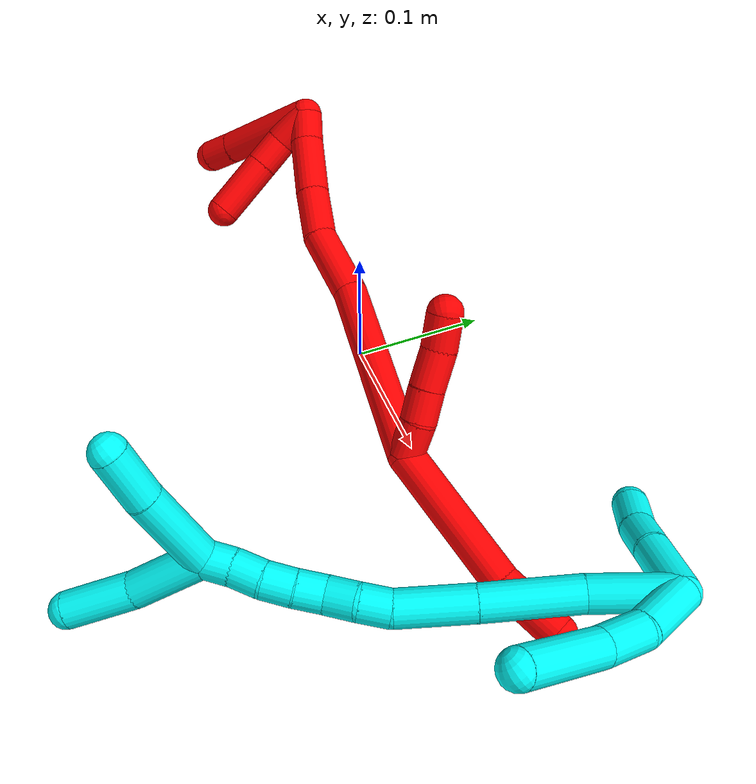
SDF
<sdf version="1.7">
 <world name="default">
  <model name="2">
   <static>0</static>
   <link name="2">
    <collision name="collision-cylinder-e_1_2_8">
     <pose>0.030116 -0.006044 0.041065 0.146133 0.627665 0.047504</pose>
     <geometry><cylinder><radius>0.0125</radius><length>0.102564</length></cylinder></geometry>
     <surface>
      <friction><ode><mu>1.16</mu><mu2>1.16</mu2><slip1>0</slip1><slip2>0</slip2></ode></friction>
      <contact><ode><kp>1e+06</kp><kd>1</kd><max_vel>0</max_vel><min_depth>0.001</min_depth></ode></contact>
     </surface>
    </collision>
    <visual name="visual-cylinder-e_1_2_8">
     <pose>0.030116 -0.006044 0.041065 0.146133 0.627665 0.047504</pose>
     <geometry><cylinder><radius>0.0125</radius><length>0.102564</length></cylinder></geometry>
     <material><ambient>1 0 0 1</ambient></material>
    </visual>
    <collision name="collision-cylinder-e_2_8_6">
     <pose>0.076133 -0.010491 0.099656 -0.090908 0.734811 -0.035009</pose>
     <geometry><cylinder><radius>0.0125</radius><length>0.047436</length></cylinder></geometry>
     <surface>
      <friction><ode><mu>1.16</mu><mu2>1.16</mu2><slip1>0</slip1><slip2>0</slip2></ode></friction>
      <contact><ode><kp>1e+06</kp><kd>1</kd><max_vel>0</max_vel><min_depth>0.001</min_depth></ode></contact>
     </surface>
    </collision>
    <visual name="visual-cylinder-e_2_8_6">
     <pose>0.076133 -0.010491 0.099656 -0.090908 0.734811 -0.035009</pose>
     <geometry><cylinder><radius>0.0125</radius><length>0.047436</length></cylinder></geometry>
     <material><ambient>1 0 0 1</ambient></material>
    </visual>
    <collision name="collision-cylinder-e_1_2_9">
     <pose>0.001824 0.010641 -0.006868 -2.14394 0.143023 -0.261482</pose>
     <geometry><cylinder><radius>0.0125</radius><length>0.025591</length></cylinder></geometry>
     <surface>
      <friction><ode><mu>1.16</mu><mu2>1.16</mu2><slip1>0</slip1><slip2>0</slip2></ode></friction>
      <contact><ode><kp>1e+06</kp><kd>1</kd><max_vel>0</max_vel><min_depth>0.001</min_depth></ode></contact>
     </surface>
    </collision>
    <visual name="visual-cylinder-e_1_2_9">
     <pose>0.001824 0.010641 -0.006868 -2.14394 0.143023 -0.261482</pose>
     <geometry><cylinder><radius>0.0125</radius><length>0.025591</length></cylinder></geometry>
     <material><ambient>1 0 0 1</ambient></material>
    </visual>
    <collision name="collision-cylinder-e_2_9_10">
     <pose>0.004703 0.02954 -0.021303 -2.31261 0.09393 -0.212835</pose>
     <geometry><cylinder><radius>0.0125</radius><length>0.022502</length></cylinder></geometry>
     <surface>
      <friction><ode><mu>1.16</mu><mu2>1.16</mu2><slip1>0</slip1><slip2>0</slip2></ode></friction>
      <contact><ode><kp>1e+06</kp><kd>1</kd><max_vel>0</max_vel><min_depth>0.001</min_depth></ode></contact>
     </surface>
    </collision>
    <visual name="visual-cylinder-e_2_9_10">
     <pose>0.004703 0.02954 -0.021303 -2.31261 0.09393 -0.212835</pose>
     <geometry><cylinder><radius>0.0125</radius><length>0.022502</length></cylinder></geometry>
     <material><ambient>1 0 0 1</ambient></material>
    </visual>
    <collision name="collision-cylinder-e_3_10_11">
     <pose>0.007851 0.047647 -0.038044 -2.32067 0.154251 -0.351495</pose>
     <geometry><cylinder><radius>0.0125</radius><length>0.027242</length></cylinder></geometry>
     <surface>
      <friction><ode><mu>1.16</mu><mu2>1.16</mu2><slip1>0</slip1><slip2>0</slip2></ode></friction>
      <contact><ode><kp>1e+06</kp><kd>1</kd><max_vel>0</max_vel><min_depth>0.001</min_depth></ode></contact>
     </surface>
    </collision>
    <visual name="visual-cylinder-e_3_10_11">
     <pose>0.007851 0.047647 -0.038044 -2.32067 0.154251 -0.351495</pose>
     <geometry><cylinder><radius>0.0125</radius><length>0.027242</length></cylinder></geometry>
     <material><ambient>1 0 0 1</ambient></material>
    </visual>
    <collision name="collision-cylinder-e_4_11_5">
     <pose>0.009671 0.067311 -0.054681 -2.22092 -0.022083 0.044528</pose>
     <geometry><cylinder><radius>0.0125</radius><length>0.024666</length></cylinder></geometry>
     <surface>
      <friction><ode><mu>1.16</mu><mu2>1.16</mu2><slip1>0</slip1><slip2>0</slip2></ode></friction>
      <contact><ode><kp>1e+06</kp><kd>1</kd><max_vel>0</max_vel><min_depth>0.001</min_depth></ode></contact>
     </surface>
    </collision>
    <visual name="visual-cylinder-e_4_11_5">
     <pose>0.009671 0.067311 -0.054681 -2.22092 -0.022083 0.044528</pose>
     <geometry><cylinder><radius>0.0125</radius><length>0.024666</length></cylinder></geometry>
     <material><ambient>1 0 0 1</ambient></material>
    </visual>
    <collision name="collision-cylinder-e_1_2_12">
     <pose>-0.014073 -0.000421 -0.068647 3.13547 -0.202206 -3.08122</pose>
     <geometry><cylinder><radius>0.0125</radius><length>0.140152</length></cylinder></geometry>
     <surface>
      <friction><ode><mu>1.16</mu><mu2>1.16</mu2><slip1>0</slip1><slip2>0</slip2></ode></friction>
      <contact><ode><kp>1e+06</kp><kd>1</kd><max_vel>0</max_vel><min_depth>0.001</min_depth></ode></contact>
     </surface>
    </collision>
    <visual name="visual-cylinder-e_1_2_12">
     <pose>-0.014073 -0.000421 -0.068647 3.13547 -0.202206 -3.08122</pose>
     <geometry><cylinder><radius>0.0125</radius><length>0.140152</length></cylinder></geometry>
     <material><ambient>1 0 0 1</ambient></material>
    </visual>
    <collision name="collision-cylinder-e_2_12_13">
     <pose>-0.038419 3.4e-05 -0.161883 -3.106 -0.395491 2.96442</pose>
     <geometry><cylinder><radius>0.0125</radius><length>0.053327</length></cylinder></geometry>
     <surface>
      <friction><ode><mu>1.16</mu><mu2>1.16</mu2><slip1>0</slip1><slip2>0</slip2></ode></friction>
      <contact><ode><kp>1e+06</kp><kd>1</kd><max_vel>0</max_vel><min_depth>0.001</min_depth></ode></contact>
     </surface>
    </collision>
    <visual name="visual-cylinder-e_2_12_13">
     <pose>-0.038419 3.4e-05 -0.161883 -3.106 -0.395491 2.96442</pose>
     <geometry><cylinder><radius>0.0125</radius><length>0.053327</length></cylinder></geometry>
     <material><ambient>1 0 0 1</ambient></material>
    </visual>
    <collision name="collision-cylinder-e_3_13_14">
     <pose>-0.051564 0.004932 -0.204805 -2.92563 -0.151852 1.22381</pose>
     <geometry><cylinder><radius>0.0125</radius><length>0.037973</length></cylinder></geometry>
     <surface>
      <friction><ode><mu>1.16</mu><mu2>1.16</mu2><slip1>0</slip1><slip2>0</slip2></ode></friction>
      <contact><ode><kp>1e+06</kp><kd>1</kd><max_vel>0</max_vel><min_depth>0.001</min_depth></ode></contact>
     </surface>
    </collision>
    <visual name="visual-cylinder-e_3_13_14">
     <pose>-0.051564 0.004932 -0.204805 -2.92563 -0.151852 1.22381</pose>
     <geometry><cylinder><radius>0.0125</radius><length>0.037973</length></cylinder></geometry>
     <material><ambient>1 0 0 1</ambient></material>
    </visual>
    <collision name="collision-cylinder-e_4_14_15">
     <pose>-0.056957 0.014633 -0.245239 -2.89005 -0.110054 0.821702</pose>
     <geometry><cylinder><radius>0.0125</radius><length>0.045917</length></cylinder></geometry>
     <surface>
      <friction><ode><mu>1.16</mu><mu2>1.16</mu2><slip1>0</slip1><slip2>0</slip2></ode></friction>
      <contact><ode><kp>1e+06</kp><kd>1</kd><max_vel>0</max_vel><min_depth>0.001</min_depth></ode></contact>
     </surface>
    </collision>
    <visual name="visual-cylinder-e_4_14_15">
     <pose>-0.056957 0.014633 -0.245239 -2.89005 -0.110054 0.821702</pose>
     <geometry><cylinder><radius>0.0125</radius><length>0.045917</length></cylinder></geometry>
     <material><ambient>1 0 0 1</ambient></material>
    </visual>
    <collision name="collision-cylinder-e_5_15_1">
     <pose>-0.060775 0.025696 -0.277209 -2.6422 -0.114754 0.44308</pose>
     <geometry><cylinder><radius>0.0125</radius><length>0.022631</length></cylinder></geometry>
     <surface>
      <friction><ode><mu>1.16</mu><mu2>1.16</mu2><slip1>0</slip1><slip2>0</slip2></ode></friction>
      <contact><ode><kp>1e+06</kp><kd>1</kd><max_vel>0</max_vel><min_depth>0.001</min_depth></ode></contact>
     </surface>
    </collision>
    <visual name="visual-cylinder-e_5_15_1">
     <pose>-0.060775 0.025696 -0.277209 -2.6422 -0.114754 0.44308</pose>
     <geometry><cylinder><radius>0.0125</radius><length>0.022631</length></cylinder></geometry>
     <material><ambient>1 0 0 1</ambient></material>
    </visual>
    <collision name="collision-cylinder-e_1_1_16">
     <pose>-0.085196 0.001566 -0.294651 1.82201 -0.649211 -0.818557</pose>
     <geometry><cylinder><radius>0.0125</radius><length>0.076504</length></cylinder></geometry>
     <surface>
      <friction><ode><mu>1.16</mu><mu2>1.16</mu2><slip1>0</slip1><slip2>0</slip2></ode></friction>
      <contact><ode><kp>1e+06</kp><kd>1</kd><max_vel>0</max_vel><min_depth>0.001</min_depth></ode></contact>
     </surface>
    </collision>
    <visual name="visual-cylinder-e_1_1_16">
     <pose>-0.085196 0.001566 -0.294651 1.82201 -0.649211 -0.818557</pose>
     <geometry><cylinder><radius>0.0125</radius><length>0.076504</length></cylinder></geometry>
     <material><ambient>1 0 0 1</ambient></material>
    </visual>
    <collision name="collision-cylinder-e_2_16_4">
     <pose>-0.115651 -0.036809 -0.304624 1.83517 -0.673747 -0.858378</pose>
     <geometry><cylinder><radius>0.0125</radius><length>0.023496</length></cylinder></geometry>
     <surface>
      <friction><ode><mu>1.16</mu><mu2>1.16</mu2><slip1>0</slip1><slip2>0</slip2></ode></friction>
      <contact><ode><kp>1e+06</kp><kd>1</kd><max_vel>0</max_vel><min_depth>0.001</min_depth></ode></contact>
     </surface>
    </collision>
    <visual name="visual-cylinder-e_2_16_4">
     <pose>-0.115651 -0.036809 -0.304624 1.83517 -0.673747 -0.858378</pose>
     <geometry><cylinder><radius>0.0125</radius><length>0.023496</length></cylinder></geometry>
     <material><ambient>1 0 0 1</ambient></material>
    </visual>
    <collision name="collision-cylinder-e_1_1_17">
     <pose>-0.069707 0.019734 -0.282135 1.16 -0.552895 -0.367565</pose>
     <geometry><cylinder><radius>0.0125</radius><length>0.029084</length></cylinder></geometry>
     <surface>
      <friction><ode><mu>1.16</mu><mu2>1.16</mu2><slip1>0</slip1><slip2>0</slip2></ode></friction>
      <contact><ode><kp>1e+06</kp><kd>1</kd><max_vel>0</max_vel><min_depth>0.001</min_depth></ode></contact>
     </surface>
    </collision>
    <visual name="visual-cylinder-e_1_1_17">
     <pose>-0.069707 0.019734 -0.282135 1.16 -0.552895 -0.367565</pose>
     <geometry><cylinder><radius>0.0125</radius><length>0.029084</length></cylinder></geometry>
     <material><ambient>1 0 0 1</ambient></material>
    </visual>
    <collision name="collision-cylinder-e_2_17_18">
     <pose>-0.083797 0.000781 -0.270325 0.836441 -0.561931 -0.255137</pose>
     <geometry><cylinder><radius>0.0125</radius><length>0.024222</length></cylinder></geometry>
     <surface>
      <friction><ode><mu>1.16</mu><mu2>1.16</mu2><slip1>0</slip1><slip2>0</slip2></ode></friction>
      <contact><ode><kp>1e+06</kp><kd>1</kd><max_vel>0</max_vel><min_depth>0.001</min_depth></ode></contact>
     </surface>
    </collision>
    <visual name="visual-cylinder-e_2_17_18">
     <pose>-0.083797 0.000781 -0.270325 0.836441 -0.561931 -0.255137</pose>
     <geometry><cylinder><radius>0.0125</radius><length>0.024222</length></cylinder></geometry>
     <material><ambient>1 0 0 1</ambient></material>
    </visual>
    <collision name="collision-cylinder-e_3_18_3">
     <pose>-0.102748 -0.021007 -0.249754 0.802508 -0.564877 -0.245011</pose>
     <geometry><cylinder><radius>0.0125</radius><length>0.046694</length></cylinder></geometry>
     <surface>
      <friction><ode><mu>1.16</mu><mu2>1.16</mu2><slip1>0</slip1><slip2>0</slip2></ode></friction>
      <contact><ode><kp>1e+06</kp><kd>1</kd><max_vel>0</max_vel><min_depth>0.001</min_depth></ode></contact>
     </surface>
    </collision>
    <visual name="visual-cylinder-e_3_18_3">
     <pose>-0.102748 -0.021007 -0.249754 0.802508 -0.564877 -0.245011</pose>
     <geometry><cylinder><radius>0.0125</radius><length>0.046694</length></cylinder></geometry>
     <material><ambient>1 0 0 1</ambient></material>
    </visual>
    <collision name="collision-sphere-3">
     <pose>-0.115246 -0.035188 -0.23605 0 -0 0</pose>
     <geometry><sphere><radius>0.0125</radius></sphere></geometry>
     <surface>
      <friction><ode><mu>1.16</mu><mu2>1.16</mu2><slip1>0</slip1><slip2>0</slip2></ode></friction>
      <contact><ode><kp>1e+06</kp><kd>1</kd><max_vel>0</max_vel><min_depth>0.001</min_depth></ode></contact>
     </surface>
    </collision>
    <visual name="visual-sphere-3">
     <pose>-0.115246 -0.035188 -0.23605 0 -0 0</pose>
     <geometry><sphere><radius>0.0125</radius></sphere></geometry>
     <material><ambient>1 0 0 1</ambient></material>
    </visual>
    <collision name="collision-sphere-11">
     <pose>0.009943 0.057496 -0.047217 0 -0 0</pose>
     <geometry><sphere><radius>0.0125</radius></sphere></geometry>
     <surface>
      <friction><ode><mu>1.16</mu><mu2>1.16</mu2><slip1>0</slip1><slip2>0</slip2></ode></friction>
      <contact><ode><kp>1e+06</kp><kd>1</kd><max_vel>0</max_vel><min_depth>0.001</min_depth></ode></contact>
     </surface>
    </collision>
    <visual name="visual-sphere-11">
     <pose>0.009943 0.057496 -0.047217 0 -0 0</pose>
     <geometry><sphere><radius>0.0125</radius></sphere></geometry>
     <material><ambient>1 0 0 1</ambient></material>
    </visual>
    <collision name="collision-sphere-10">
     <pose>0.005758 0.037798 -0.028871 0 -0 0</pose>
     <geometry><sphere><radius>0.0125</radius></sphere></geometry>
     <surface>
      <friction><ode><mu>1.16</mu><mu2>1.16</mu2><slip1>0</slip1><slip2>0</slip2></ode></friction>
      <contact><ode><kp>1e+06</kp><kd>1</kd><max_vel>0</max_vel><min_depth>0.001</min_depth></ode></contact>
     </surface>
    </collision>
    <visual name="visual-sphere-10">
     <pose>0.005758 0.037798 -0.028871 0 -0 0</pose>
     <geometry><sphere><radius>0.0125</radius></sphere></geometry>
     <material><ambient>1 0 0 1</ambient></material>
    </visual>
    <collision name="collision-sphere-6">
     <pose>0.092035 -0.008893 0.117181 0 -0 0</pose>
     <geometry><sphere><radius>0.0125</radius></sphere></geometry>
     <surface>
      <friction><ode><mu>1.16</mu><mu2>1.16</mu2><slip1>0</slip1><slip2>0</slip2></ode></friction>
      <contact><ode><kp>1e+06</kp><kd>1</kd><max_vel>0</max_vel><min_depth>0.001</min_depth></ode></contact>
     </surface>
    </collision>
    <visual name="visual-sphere-6">
     <pose>0.092035 -0.008893 0.117181 0 -0 0</pose>
     <geometry><sphere><radius>0.0125</radius></sphere></geometry>
     <material><ambient>1 0 0 1</ambient></material>
    </visual>
    <collision name="collision-sphere-9">
     <pose>0.003648 0.021282 -0.013736 0 -0 0</pose>
     <geometry><sphere><radius>0.0125</radius></sphere></geometry>
     <surface>
      <friction><ode><mu>1.16</mu><mu2>1.16</mu2><slip1>0</slip1><slip2>0</slip2></ode></friction>
      <contact><ode><kp>1e+06</kp><kd>1</kd><max_vel>0</max_vel><min_depth>0.001</min_depth></ode></contact>
     </surface>
    </collision>
    <visual name="visual-sphere-9">
     <pose>0.003648 0.021282 -0.013736 0 -0 0</pose>
     <geometry><sphere><radius>0.0125</radius></sphere></geometry>
     <material><ambient>1 0 0 1</ambient></material>
    </visual>
    <collision name="collision-sphere-2">
     <geometry><sphere><radius>0.0125</radius></sphere></geometry>
     <surface>
      <friction><ode><mu>1.16</mu><mu2>1.16</mu2><slip1>0</slip1><slip2>0</slip2></ode></friction>
      <contact><ode><kp>1e+06</kp><kd>1</kd><max_vel>0</max_vel><min_depth>0.001</min_depth></ode></contact>
     </surface>
    </collision>
    <visual name="visual-sphere-2">
     <geometry><sphere><radius>0.0125</radius></sphere></geometry>
     <material><ambient>1 0 0 1</ambient></material>
    </visual>
    <collision name="collision-sphere-8">
     <pose>0.060231 -0.012088 0.082131 0 -0 0</pose>
     <geometry><sphere><radius>0.0125</radius></sphere></geometry>
     <surface>
      <friction><ode><mu>1.16</mu><mu2>1.16</mu2><slip1>0</slip1><slip2>0</slip2></ode></friction>
      <contact><ode><kp>1e+06</kp><kd>1</kd><max_vel>0</max_vel><min_depth>0.001</min_depth></ode></contact>
     </surface>
    </collision>
    <visual name="visual-sphere-8">
     <pose>0.060231 -0.012088 0.082131 0 -0 0</pose>
     <geometry><sphere><radius>0.0125</radius></sphere></geometry>
     <material><ambient>1 0 0 1</ambient></material>
    </visual>
    <collision name="collision-sphere-5">
     <pose>0.009399 0.077125 -0.062144 0 -0 0</pose>
     <geometry><sphere><radius>0.0125</radius></sphere></geometry>
     <surface>
      <friction><ode><mu>1.16</mu><mu2>1.16</mu2><slip1>0</slip1><slip2>0</slip2></ode></friction>
      <contact><ode><kp>1e+06</kp><kd>1</kd><max_vel>0</max_vel><min_depth>0.001</min_depth></ode></contact>
     </surface>
    </collision>
    <visual name="visual-sphere-5">
     <pose>0.009399 0.077125 -0.062144 0 -0 0</pose>
     <geometry><sphere><radius>0.0125</radius></sphere></geometry>
     <material><ambient>1 0 0 1</ambient></material>
    </visual>
    <collision name="collision-sphere-12">
     <pose>-0.028147 -0.000841 -0.137294 0 -0 0</pose>
     <geometry><sphere><radius>0.0125</radius></sphere></geometry>
     <surface>
      <friction><ode><mu>1.16</mu><mu2>1.16</mu2><slip1>0</slip1><slip2>0</slip2></ode></friction>
      <contact><ode><kp>1e+06</kp><kd>1</kd><max_vel>0</max_vel><min_depth>0.001</min_depth></ode></contact>
     </surface>
    </collision>
    <visual name="visual-sphere-12">
     <pose>-0.028147 -0.000841 -0.137294 0 -0 0</pose>
     <geometry><sphere><radius>0.0125</radius></sphere></geometry>
     <material><ambient>1 0 0 1</ambient></material>
    </visual>
    <collision name="collision-sphere-13">
     <pose>-0.048692 0.00091 -0.186473 0 -0 0</pose>
     <geometry><sphere><radius>0.0125</radius></sphere></geometry>
     <surface>
      <friction><ode><mu>1.16</mu><mu2>1.16</mu2><slip1>0</slip1><slip2>0</slip2></ode></friction>
      <contact><ode><kp>1e+06</kp><kd>1</kd><max_vel>0</max_vel><min_depth>0.001</min_depth></ode></contact>
     </surface>
    </collision>
    <visual name="visual-sphere-13">
     <pose>-0.048692 0.00091 -0.186473 0 -0 0</pose>
     <geometry><sphere><radius>0.0125</radius></sphere></geometry>
     <material><ambient>1 0 0 1</ambient></material>
    </visual>
    <collision name="collision-sphere-14">
     <pose>-0.054436 0.008953 -0.223137 0 -0 0</pose>
     <geometry><sphere><radius>0.0125</radius></sphere></geometry>
     <surface>
      <friction><ode><mu>1.16</mu><mu2>1.16</mu2><slip1>0</slip1><slip2>0</slip2></ode></friction>
      <contact><ode><kp>1e+06</kp><kd>1</kd><max_vel>0</max_vel><min_depth>0.001</min_depth></ode></contact>
     </surface>
    </collision>
    <visual name="visual-sphere-14">
     <pose>-0.054436 0.008953 -0.223137 0 -0 0</pose>
     <geometry><sphere><radius>0.0125</radius></sphere></geometry>
     <material><ambient>1 0 0 1</ambient></material>
    </visual>
    <collision name="collision-sphere-15">
     <pose>-0.059479 0.020313 -0.26734 0 -0 0</pose>
     <geometry><sphere><radius>0.0125</radius></sphere></geometry>
     <surface>
      <friction><ode><mu>1.16</mu><mu2>1.16</mu2><slip1>0</slip1><slip2>0</slip2></ode></friction>
      <contact><ode><kp>1e+06</kp><kd>1</kd><max_vel>0</max_vel><min_depth>0.001</min_depth></ode></contact>
     </surface>
    </collision>
    <visual name="visual-sphere-15">
     <pose>-0.059479 0.020313 -0.26734 0 -0 0</pose>
     <geometry><sphere><radius>0.0125</radius></sphere></geometry>
     <material><ambient>1 0 0 1</ambient></material>
    </visual>
    <collision name="collision-sphere-1">
     <pose>-0.06207 0.03108 -0.287077 0 -0 0</pose>
     <geometry><sphere><radius>0.0125</radius></sphere></geometry>
     <surface>
      <friction><ode><mu>1.16</mu><mu2>1.16</mu2><slip1>0</slip1><slip2>0</slip2></ode></friction>
      <contact><ode><kp>1e+06</kp><kd>1</kd><max_vel>0</max_vel><min_depth>0.001</min_depth></ode></contact>
     </surface>
    </collision>
    <visual name="visual-sphere-1">
     <pose>-0.06207 0.03108 -0.287077 0 -0 0</pose>
     <geometry><sphere><radius>0.0125</radius></sphere></geometry>
     <material><ambient>1 0 0 1</ambient></material>
    </visual>
    <collision name="collision-sphere-18">
     <pose>-0.09025 -0.006826 -0.263458 0 -0 0</pose>
     <geometry><sphere><radius>0.0125</radius></sphere></geometry>
     <surface>
      <friction><ode><mu>1.16</mu><mu2>1.16</mu2><slip1>0</slip1><slip2>0</slip2></ode></friction>
      <contact><ode><kp>1e+06</kp><kd>1</kd><max_vel>0</max_vel><min_depth>0.001</min_depth></ode></contact>
     </surface>
    </collision>
    <visual name="visual-sphere-18">
     <pose>-0.09025 -0.006826 -0.263458 0 -0 0</pose>
     <geometry><sphere><radius>0.0125</radius></sphere></geometry>
     <material><ambient>1 0 0 1</ambient></material>
    </visual>
    <collision name="collision-sphere-16">
     <pose>-0.108321 -0.027947 -0.302225 0 -0 0</pose>
     <geometry><sphere><radius>0.0125</radius></sphere></geometry>
     <surface>
      <friction><ode><mu>1.16</mu><mu2>1.16</mu2><slip1>0</slip1><slip2>0</slip2></ode></friction>
      <contact><ode><kp>1e+06</kp><kd>1</kd><max_vel>0</max_vel><min_depth>0.001</min_depth></ode></contact>
     </surface>
    </collision>
    <visual name="visual-sphere-16">
     <pose>-0.108321 -0.027947 -0.302225 0 -0 0</pose>
     <geometry><sphere><radius>0.0125</radius></sphere></geometry>
     <material><ambient>1 0 0 1</ambient></material>
    </visual>
    <collision name="collision-sphere-4">
     <pose>-0.122981 -0.045671 -0.307024 0 -0 0</pose>
     <geometry><sphere><radius>0.0125</radius></sphere></geometry>
     <surface>
      <friction><ode><mu>1.16</mu><mu2>1.16</mu2><slip1>0</slip1><slip2>0</slip2></ode></friction>
      <contact><ode><kp>1e+06</kp><kd>1</kd><max_vel>0</max_vel><min_depth>0.001</min_depth></ode></contact>
     </surface>
    </collision>
    <visual name="visual-sphere-4">
     <pose>-0.122981 -0.045671 -0.307024 0 -0 0</pose>
     <geometry><sphere><radius>0.0125</radius></sphere></geometry>
     <material><ambient>1 0 0 1</ambient></material>
    </visual>
    <collision name="collision-sphere-17">
     <pose>-0.077344 0.008388 -0.277193 0 -0 0</pose>
     <geometry><sphere><radius>0.0125</radius></sphere></geometry>
     <surface>
      <friction><ode><mu>1.16</mu><mu2>1.16</mu2><slip1>0</slip1><slip2>0</slip2></ode></friction>
      <contact><ode><kp>1e+06</kp><kd>1</kd><max_vel>0</max_vel><min_depth>0.001</min_depth></ode></contact>
     </surface>
    </collision>
    <visual name="visual-sphere-17">
     <pose>-0.077344 0.008388 -0.277193 0 -0 0</pose>
     <geometry><sphere><radius>0.0125</radius></sphere></geometry>
     <material><ambient>1 0 0 1</ambient></material>
    </visual>
    <inertial>
     <pose>-0.027673 0.004038 -0.125041 0 -0 0</pose>
     <mass>0.75</mass>
     <inertia>
      <ixx>-0.000135</ixx>
      <ixy>0</ixy>
      <ixz>0</ixz>
      <iyy>0.000332</iyy>
      <iyz>0</iyz>
      <izz>5.2e-05</izz>
     </inertia>
    </inertial>
   </link>
   <pose>0.14557 -0.025231 0.057766 1.68578 0.268904 1.29877</pose>
  </model>
  <model name="3">
   <static>0</static>
   <link name="3">
    <collision name="collision-cylinder-e_1_2_8">
     <pose>-0.016921 -0.015009 -0.006005 1.95137 -0.80823 -1.12681</pose>
     <geometry><cylinder><radius>0.0125</radius><length>0.046803</length></cylinder></geometry>
     <surface>
      <friction><ode><mu>1.16</mu><mu2>1.16</mu2><slip1>0</slip1><slip2>0</slip2></ode></friction>
      <contact><ode><kp>1e+06</kp><kd>1</kd><max_vel>0</max_vel><min_depth>0.001</min_depth></ode></contact>
     </surface>
    </collision>
    <visual name="visual-cylinder-e_1_2_8">
     <pose>-0.016921 -0.015009 -0.006005 1.95137 -0.80823 -1.12681</pose>
     <geometry><cylinder><radius>0.0125</radius><length>0.046803</length></cylinder></geometry>
     <material><ambient>0.003922 1 0.996078 1</ambient></material>
    </visual>
    <collision name="collision-cylinder-e_2_8_9">
     <pose>-0.041986 -0.042254 -0.0191 2.09599 -0.522488 -0.868744</pose>
     <geometry><cylinder><radius>0.0125</radius><length>0.03264</length></cylinder></geometry>
     <surface>
      <friction><ode><mu>1.16</mu><mu2>1.16</mu2><slip1>0</slip1><slip2>0</slip2></ode></friction>
      <contact><ode><kp>1e+06</kp><kd>1</kd><max_vel>0</max_vel><min_depth>0.001</min_depth></ode></contact>
     </surface>
    </collision>
    <visual name="visual-cylinder-e_2_8_9">
     <pose>-0.041986 -0.042254 -0.0191 2.09599 -0.522488 -0.868744</pose>
     <geometry><cylinder><radius>0.0125</radius><length>0.03264</length></cylinder></geometry>
     <material><ambient>0.003922 1 0.996078 1</ambient></material>
    </visual>
    <collision name="collision-cylinder-e_3_9_6">
     <pose>-0.073076 -0.07243 -0.046097 2.4081 -0.708131 -1.53238</pose>
     <geometry><cylinder><radius>0.0125</radius><length>0.070557</length></cylinder></geometry>
     <surface>
      <friction><ode><mu>1.16</mu><mu2>1.16</mu2><slip1>0</slip1><slip2>0</slip2></ode></friction>
      <contact><ode><kp>1e+06</kp><kd>1</kd><max_vel>0</max_vel><min_depth>0.001</min_depth></ode></contact>
     </surface>
    </collision>
    <visual name="visual-cylinder-e_3_9_6">
     <pose>-0.073076 -0.07243 -0.046097 2.4081 -0.708131 -1.53238</pose>
     <geometry><cylinder><radius>0.0125</radius><length>0.070557</length></cylinder></geometry>
     <material><ambient>0.003922 1 0.996078 1</ambient></material>
    </visual>
    <collision name="collision-cylinder-e_1_2_10">
     <pose>0.020688 -9.8e-05 -0.007285 3.12809 1.23219 3.12253</pose>
     <geometry><cylinder><radius>0.0125</radius><length>0.043867</length></cylinder></geometry>
     <surface>
      <friction><ode><mu>1.16</mu><mu2>1.16</mu2><slip1>0</slip1><slip2>0</slip2></ode></friction>
      <contact><ode><kp>1e+06</kp><kd>1</kd><max_vel>0</max_vel><min_depth>0.001</min_depth></ode></contact>
     </surface>
    </collision>
    <visual name="visual-cylinder-e_1_2_10">
     <pose>0.020688 -9.8e-05 -0.007285 3.12809 1.23219 3.12253</pose>
     <geometry><cylinder><radius>0.0125</radius><length>0.043867</length></cylinder></geometry>
     <material><ambient>0.003922 1 0.996078 1</ambient></material>
    </visual>
    <collision name="collision-cylinder-e_2_10_11">
     <pose>0.054958 -0.000356 -0.017037 3.07707 1.39077 3.06428</pose>
     <geometry><cylinder><radius>0.0125</radius><length>0.027611</length></cylinder></geometry>
     <surface>
      <friction><ode><mu>1.16</mu><mu2>1.16</mu2><slip1>0</slip1><slip2>0</slip2></ode></friction>
      <contact><ode><kp>1e+06</kp><kd>1</kd><max_vel>0</max_vel><min_depth>0.001</min_depth></ode></contact>
     </surface>
    </collision>
    <visual name="visual-cylinder-e_2_10_11">
     <pose>0.054958 -0.000356 -0.017037 3.07707 1.39077 3.06428</pose>
     <geometry><cylinder><radius>0.0125</radius><length>0.027611</length></cylinder></geometry>
     <material><ambient>0.003922 1 0.996078 1</ambient></material>
    </visual>
    <collision name="collision-cylinder-e_3_11_5">
     <pose>0.082331 0.002019 -0.022107 -2.36953 1.3132 -2.171</pose>
     <geometry><cylinder><radius>0.0125</radius><length>0.028522</length></cylinder></geometry>
     <surface>
      <friction><ode><mu>1.16</mu><mu2>1.16</mu2><slip1>0</slip1><slip2>0</slip2></ode></friction>
      <contact><ode><kp>1e+06</kp><kd>1</kd><max_vel>0</max_vel><min_depth>0.001</min_depth></ode></contact>
     </surface>
    </collision>
    <visual name="visual-cylinder-e_3_11_5">
     <pose>0.082331 0.002019 -0.022107 -2.36953 1.3132 -2.171</pose>
     <geometry><cylinder><radius>0.0125</radius><length>0.028522</length></cylinder></geometry>
     <material><ambient>0.003922 1 0.996078 1</ambient></material>
    </visual>
    <collision name="collision-cylinder-e_1_2_12">
     <pose>0.002288 -0.024191 -0.016131 2.15891 0.078525 0.146559</pose>
     <geometry><cylinder><radius>0.0125</radius><length>0.058332</length></cylinder></geometry>
     <surface>
      <friction><ode><mu>1.16</mu><mu2>1.16</mu2><slip1>0</slip1><slip2>0</slip2></ode></friction>
      <contact><ode><kp>1e+06</kp><kd>1</kd><max_vel>0</max_vel><min_depth>0.001</min_depth></ode></contact>
     </surface>
    </collision>
    <visual name="visual-cylinder-e_1_2_12">
     <pose>0.002288 -0.024191 -0.016131 2.15891 0.078525 0.146559</pose>
     <geometry><cylinder><radius>0.0125</radius><length>0.058332</length></cylinder></geometry>
     <material><ambient>0.003922 1 0.996078 1</ambient></material>
    </visual>
    <collision name="collision-cylinder-e_2_12_13">
     <pose>0.00251 -0.076581 -0.050319 2.14032 -0.061619 -0.11254</pose>
     <geometry><cylinder><radius>0.0125</radius><length>0.067096</length></cylinder></geometry>
     <surface>
      <friction><ode><mu>1.16</mu><mu2>1.16</mu2><slip1>0</slip1><slip2>0</slip2></ode></friction>
      <contact><ode><kp>1e+06</kp><kd>1</kd><max_vel>0</max_vel><min_depth>0.001</min_depth></ode></contact>
     </surface>
    </collision>
    <visual name="visual-cylinder-e_2_12_13">
     <pose>0.00251 -0.076581 -0.050319 2.14032 -0.061619 -0.11254</pose>
     <geometry><cylinder><radius>0.0125</radius><length>0.067096</length></cylinder></geometry>
     <material><ambient>0.003922 1 0.996078 1</ambient></material>
    </visual>
    <collision name="collision-cylinder-e_3_13_14">
     <pose>-0.000653 -0.126523 -0.082775 2.15579 -0.04203 -0.078223</pose>
     <geometry><cylinder><radius>0.0125</radius><length>0.052205</length></cylinder></geometry>
     <surface>
      <friction><ode><mu>1.16</mu><mu2>1.16</mu2><slip1>0</slip1><slip2>0</slip2></ode></friction>
      <contact><ode><kp>1e+06</kp><kd>1</kd><max_vel>0</max_vel><min_depth>0.001</min_depth></ode></contact>
     </surface>
    </collision>
    <visual name="visual-cylinder-e_3_13_14">
     <pose>-0.000653 -0.126523 -0.082775 2.15579 -0.04203 -0.078223</pose>
     <geometry><cylinder><radius>0.0125</radius><length>0.052205</length></cylinder></geometry>
     <material><ambient>0.003922 1 0.996078 1</ambient></material>
    </visual>
    <collision name="collision-cylinder-e_4_14_15">
     <pose>-0.001065 -0.155397 -0.104728 2.38482 0.065802 0.165205</pose>
     <geometry><cylinder><radius>0.0125</radius><length>0.02082</length></cylinder></geometry>
     <surface>
      <friction><ode><mu>1.16</mu><mu2>1.16</mu2><slip1>0</slip1><slip2>0</slip2></ode></friction>
      <contact><ode><kp>1e+06</kp><kd>1</kd><max_vel>0</max_vel><min_depth>0.001</min_depth></ode></contact>
     </surface>
    </collision>
    <visual name="visual-cylinder-e_4_14_15">
     <pose>-0.001065 -0.155397 -0.104728 2.38482 0.065802 0.165205</pose>
     <geometry><cylinder><radius>0.0125</radius><length>0.02082</length></cylinder></geometry>
     <material><ambient>0.003922 1 0.996078 1</ambient></material>
    </visual>
    <collision name="collision-cylinder-e_5_15_16">
     <pose>0.002737 -0.170002 -0.119088 2.30961 0.299114 0.657419</pose>
     <geometry><cylinder><radius>0.0125</radius><length>0.021158</length></cylinder></geometry>
     <surface>
      <friction><ode><mu>1.16</mu><mu2>1.16</mu2><slip1>0</slip1><slip2>0</slip2></ode></friction>
      <contact><ode><kp>1e+06</kp><kd>1</kd><max_vel>0</max_vel><min_depth>0.001</min_depth></ode></contact>
     </surface>
    </collision>
    <visual name="visual-cylinder-e_5_15_16">
     <pose>0.002737 -0.170002 -0.119088 2.30961 0.299114 0.657419</pose>
     <geometry><cylinder><radius>0.0125</radius><length>0.021158</length></cylinder></geometry>
     <material><ambient>0.003922 1 0.996078 1</ambient></material>
    </visual>
    <collision name="collision-cylinder-e_6_16_17">
     <pose>0.005712 -0.18403 -0.133515 2.43124 -0.014184 -0.038238</pose>
     <geometry><cylinder><radius>0.0125</radius><length>0.020103</length></cylinder></geometry>
     <surface>
      <friction><ode><mu>1.16</mu><mu2>1.16</mu2><slip1>0</slip1><slip2>0</slip2></ode></friction>
      <contact><ode><kp>1e+06</kp><kd>1</kd><max_vel>0</max_vel><min_depth>0.001</min_depth></ode></contact>
     </surface>
    </collision>
    <visual name="visual-cylinder-e_6_16_17">
     <pose>0.005712 -0.18403 -0.133515 2.43124 -0.014184 -0.038238</pose>
     <geometry><cylinder><radius>0.0125</radius><length>0.020103</length></cylinder></geometry>
     <material><ambient>0.003922 1 0.996078 1</ambient></material>
    </visual>
    <collision name="collision-cylinder-e_7_17_18">
     <pose>0.006425 -0.196958 -0.148808 2.44836 0.085612 0.236065</pose>
     <geometry><cylinder><radius>0.0125</radius><length>0.020023</length></cylinder></geometry>
     <surface>
      <friction><ode><mu>1.16</mu><mu2>1.16</mu2><slip1>0</slip1><slip2>0</slip2></ode></friction>
      <contact><ode><kp>1e+06</kp><kd>1</kd><max_vel>0</max_vel><min_depth>0.001</min_depth></ode></contact>
     </surface>
    </collision>
    <visual name="visual-cylinder-e_7_17_18">
     <pose>0.006425 -0.196958 -0.148808 2.44836 0.085612 0.236065</pose>
     <geometry><cylinder><radius>0.0125</radius><length>0.020023</length></cylinder></geometry>
     <material><ambient>0.003922 1 0.996078 1</ambient></material>
    </visual>
    <collision name="collision-cylinder-e_8_18_19">
     <pose>0.009626 -0.208974 -0.164505 2.52882 0.234637 0.713267</pose>
     <geometry><cylinder><radius>0.0125</radius><length>0.020172</length></cylinder></geometry>
     <surface>
      <friction><ode><mu>1.16</mu><mu2>1.16</mu2><slip1>0</slip1><slip2>0</slip2></ode></friction>
      <contact><ode><kp>1e+06</kp><kd>1</kd><max_vel>0</max_vel><min_depth>0.001</min_depth></ode></contact>
     </surface>
    </collision>
    <visual name="visual-cylinder-e_8_18_19">
     <pose>0.009626 -0.208974 -0.164505 2.52882 0.234637 0.713267</pose>
     <geometry><cylinder><radius>0.0125</radius><length>0.020172</length></cylinder></geometry>
     <material><ambient>0.003922 1 0.996078 1</ambient></material>
    </visual>
    <collision name="collision-cylinder-e_9_19_1">
     <pose>0.013171 -0.220992 -0.180199 2.44806 0.11973 0.328727</pose>
     <geometry><cylinder><radius>0.0125</radius><length>0.020092</length></cylinder></geometry>
     <surface>
      <friction><ode><mu>1.16</mu><mu2>1.16</mu2><slip1>0</slip1><slip2>0</slip2></ode></friction>
      <contact><ode><kp>1e+06</kp><kd>1</kd><max_vel>0</max_vel><min_depth>0.001</min_depth></ode></contact>
     </surface>
    </collision>
    <visual name="visual-cylinder-e_9_19_1">
     <pose>0.013171 -0.220992 -0.180199 2.44806 0.11973 0.328727</pose>
     <geometry><cylinder><radius>0.0125</radius><length>0.020092</length></cylinder></geometry>
     <material><ambient>0.003922 1 0.996078 1</ambient></material>
    </visual>
    <collision name="collision-cylinder-e_1_1_20">
     <pose>0.001578 -0.224961 -0.216209 -3.05689 -0.422688 2.7516</pose>
     <geometry><cylinder><radius>0.0125</radius><length>0.062373</length></cylinder></geometry>
     <surface>
      <friction><ode><mu>1.16</mu><mu2>1.16</mu2><slip1>0</slip1><slip2>0</slip2></ode></friction>
      <contact><ode><kp>1e+06</kp><kd>1</kd><max_vel>0</max_vel><min_depth>0.001</min_depth></ode></contact>
     </surface>
    </collision>
    <visual name="visual-cylinder-e_1_1_20">
     <pose>0.001578 -0.224961 -0.216209 -3.05689 -0.422688 2.7516</pose>
     <geometry><cylinder><radius>0.0125</radius><length>0.062373</length></cylinder></geometry>
     <material><ambient>0.003922 1 0.996078 1</ambient></material>
    </visual>
    <collision name="collision-cylinder-e_2_20_4">
     <pose>-0.017662 -0.21973 -0.261996 -2.98106 -0.349715 2.28705</pose>
     <geometry><cylinder><radius>0.0125</radius><length>0.037627</length></cylinder></geometry>
     <surface>
      <friction><ode><mu>1.16</mu><mu2>1.16</mu2><slip1>0</slip1><slip2>0</slip2></ode></friction>
      <contact><ode><kp>1e+06</kp><kd>1</kd><max_vel>0</max_vel><min_depth>0.001</min_depth></ode></contact>
     </surface>
    </collision>
    <visual name="visual-cylinder-e_2_20_4">
     <pose>-0.017662 -0.21973 -0.261996 -2.98106 -0.349715 2.28705</pose>
     <geometry><cylinder><radius>0.0125</radius><length>0.037627</length></cylinder></geometry>
     <material><ambient>0.003922 1 0.996078 1</ambient></material>
    </visual>
    <collision name="collision-cylinder-e_1_1_21">
     <pose>0.019472 -0.252908 -0.191295 1.70411 0.195422 0.223161</pose>
     <geometry><cylinder><radius>0.0125</radius><length>0.052538</length></cylinder></geometry>
     <surface>
      <friction><ode><mu>1.16</mu><mu2>1.16</mu2><slip1>0</slip1><slip2>0</slip2></ode></friction>
      <contact><ode><kp>1e+06</kp><kd>1</kd><max_vel>0</max_vel><min_depth>0.001</min_depth></ode></contact>
     </surface>
    </collision>
    <visual name="visual-cylinder-e_1_1_21">
     <pose>0.019472 -0.252908 -0.191295 1.70411 0.195422 0.223161</pose>
     <geometry><cylinder><radius>0.0125</radius><length>0.052538</length></cylinder></geometry>
     <material><ambient>0.003922 1 0.996078 1</ambient></material>
    </visual>
    <collision name="collision-cylinder-e_2_21_3">
     <pose>0.02609 -0.301037 -0.201833 1.87588 0.063991 0.087215</pose>
     <geometry><cylinder><radius>0.0125</radius><length>0.047462</length></cylinder></geometry>
     <surface>
      <friction><ode><mu>1.16</mu><mu2>1.16</mu2><slip1>0</slip1><slip2>0</slip2></ode></friction>
      <contact><ode><kp>1e+06</kp><kd>1</kd><max_vel>0</max_vel><min_depth>0.001</min_depth></ode></contact>
     </surface>
    </collision>
    <visual name="visual-cylinder-e_2_21_3">
     <pose>0.02609 -0.301037 -0.201833 1.87588 0.063991 0.087215</pose>
     <geometry><cylinder><radius>0.0125</radius><length>0.047462</length></cylinder></geometry>
     <material><ambient>0.003922 1 0.996078 1</ambient></material>
    </visual>
    <collision name="collision-sphere-3">
     <pose>0.027608 -0.323626 -0.208947 0 -0 0</pose>
     <geometry><sphere><radius>0.0125</radius></sphere></geometry>
     <surface>
      <friction><ode><mu>1.16</mu><mu2>1.16</mu2><slip1>0</slip1><slip2>0</slip2></ode></friction>
      <contact><ode><kp>1e+06</kp><kd>1</kd><max_vel>0</max_vel><min_depth>0.001</min_depth></ode></contact>
     </surface>
    </collision>
    <visual name="visual-sphere-3">
     <pose>0.027608 -0.323626 -0.208947 0 -0 0</pose>
     <geometry><sphere><radius>0.0125</radius></sphere></geometry>
     <material><ambient>0.003922 1 0.996078 1</ambient></material>
    </visual>
    <collision name="collision-sphere-21">
     <pose>0.024573 -0.278448 -0.19472 0 -0 0</pose>
     <geometry><sphere><radius>0.0125</radius></sphere></geometry>
     <surface>
      <friction><ode><mu>1.16</mu><mu2>1.16</mu2><slip1>0</slip1><slip2>0</slip2></ode></friction>
      <contact><ode><kp>1e+06</kp><kd>1</kd><max_vel>0</max_vel><min_depth>0.001</min_depth></ode></contact>
     </surface>
    </collision>
    <visual name="visual-sphere-21">
     <pose>0.024573 -0.278448 -0.19472 0 -0 0</pose>
     <geometry><sphere><radius>0.0125</radius></sphere></geometry>
     <material><ambient>0.003922 1 0.996078 1</ambient></material>
    </visual>
    <collision name="collision-sphere-4">
     <pose>-0.024108 -0.216905 -0.279444 0 -0 0</pose>
     <geometry><sphere><radius>0.0125</radius></sphere></geometry>
     <surface>
      <friction><ode><mu>1.16</mu><mu2>1.16</mu2><slip1>0</slip1><slip2>0</slip2></ode></friction>
      <contact><ode><kp>1e+06</kp><kd>1</kd><max_vel>0</max_vel><min_depth>0.001</min_depth></ode></contact>
     </surface>
    </collision>
    <visual name="visual-sphere-4">
     <pose>-0.024108 -0.216905 -0.279444 0 -0 0</pose>
     <geometry><sphere><radius>0.0125</radius></sphere></geometry>
     <material><ambient>0.003922 1 0.996078 1</ambient></material>
    </visual>
    <collision name="collision-sphere-20">
     <pose>-0.011215 -0.222555 -0.244549 0 -0 0</pose>
     <geometry><sphere><radius>0.0125</radius></sphere></geometry>
     <surface>
      <friction><ode><mu>1.16</mu><mu2>1.16</mu2><slip1>0</slip1><slip2>0</slip2></ode></friction>
      <contact><ode><kp>1e+06</kp><kd>1</kd><max_vel>0</max_vel><min_depth>0.001</min_depth></ode></contact>
     </surface>
    </collision>
    <visual name="visual-sphere-20">
     <pose>-0.011215 -0.222555 -0.244549 0 -0 0</pose>
     <geometry><sphere><radius>0.0125</radius></sphere></geometry>
     <material><ambient>0.003922 1 0.996078 1</ambient></material>
    </visual>
    <collision name="collision-sphere-11">
     <pose>0.06854 -0.000515 -0.019504 0 -0 0</pose>
     <geometry><sphere><radius>0.0125</radius></sphere></geometry>
     <surface>
      <friction><ode><mu>1.16</mu><mu2>1.16</mu2><slip1>0</slip1><slip2>0</slip2></ode></friction>
      <contact><ode><kp>1e+06</kp><kd>1</kd><max_vel>0</max_vel><min_depth>0.001</min_depth></ode></contact>
     </surface>
    </collision>
    <visual name="visual-sphere-11">
     <pose>0.06854 -0.000515 -0.019504 0 -0 0</pose>
     <geometry><sphere><radius>0.0125</radius></sphere></geometry>
     <material><ambient>0.003922 1 0.996078 1</ambient></material>
    </visual>
    <collision name="collision-sphere-10">
     <pose>0.041376 -0.000197 -0.01457 0 -0 0</pose>
     <geometry><sphere><radius>0.0125</radius></sphere></geometry>
     <surface>
      <friction><ode><mu>1.16</mu><mu2>1.16</mu2><slip1>0</slip1><slip2>0</slip2></ode></friction>
      <contact><ode><kp>1e+06</kp><kd>1</kd><max_vel>0</max_vel><min_depth>0.001</min_depth></ode></contact>
     </surface>
    </collision>
    <visual name="visual-sphere-10">
     <pose>0.041376 -0.000197 -0.01457 0 -0 0</pose>
     <geometry><sphere><radius>0.0125</radius></sphere></geometry>
     <material><ambient>0.003922 1 0.996078 1</ambient></material>
    </visual>
    <collision name="collision-sphere-6">
     <pose>-0.096022 -0.09037 -0.066002 0 -0 0</pose>
     <geometry><sphere><radius>0.0125</radius></sphere></geometry>
     <surface>
      <friction><ode><mu>1.16</mu><mu2>1.16</mu2><slip1>0</slip1><slip2>0</slip2></ode></friction>
      <contact><ode><kp>1e+06</kp><kd>1</kd><max_vel>0</max_vel><min_depth>0.001</min_depth></ode></contact>
     </surface>
    </collision>
    <visual name="visual-sphere-6">
     <pose>-0.096022 -0.09037 -0.066002 0 -0 0</pose>
     <geometry><sphere><radius>0.0125</radius></sphere></geometry>
     <material><ambient>0.003922 1 0.996078 1</ambient></material>
    </visual>
    <collision name="collision-sphere-9">
     <pose>-0.05013 -0.05449 -0.026191 0 -0 0</pose>
     <geometry><sphere><radius>0.0125</radius></sphere></geometry>
     <surface>
      <friction><ode><mu>1.16</mu><mu2>1.16</mu2><slip1>0</slip1><slip2>0</slip2></ode></friction>
      <contact><ode><kp>1e+06</kp><kd>1</kd><max_vel>0</max_vel><min_depth>0.001</min_depth></ode></contact>
     </surface>
    </collision>
    <visual name="visual-sphere-9">
     <pose>-0.05013 -0.05449 -0.026191 0 -0 0</pose>
     <geometry><sphere><radius>0.0125</radius></sphere></geometry>
     <material><ambient>0.003922 1 0.996078 1</ambient></material>
    </visual>
    <collision name="collision-sphere-2">
     <geometry><sphere><radius>0.0125</radius></sphere></geometry>
     <surface>
      <friction><ode><mu>1.16</mu><mu2>1.16</mu2><slip1>0</slip1><slip2>0</slip2></ode></friction>
      <contact><ode><kp>1e+06</kp><kd>1</kd><max_vel>0</max_vel><min_depth>0.001</min_depth></ode></contact>
     </surface>
    </collision>
    <visual name="visual-sphere-2">
     <geometry><sphere><radius>0.0125</radius></sphere></geometry>
     <material><ambient>0.003922 1 0.996078 1</ambient></material>
    </visual>
    <collision name="collision-sphere-19">
     <pose>0.011971 -0.214616 -0.172529 0 -0 0</pose>
     <geometry><sphere><radius>0.0125</radius></sphere></geometry>
     <surface>
      <friction><ode><mu>1.16</mu><mu2>1.16</mu2><slip1>0</slip1><slip2>0</slip2></ode></friction>
      <contact><ode><kp>1e+06</kp><kd>1</kd><max_vel>0</max_vel><min_depth>0.001</min_depth></ode></contact>
     </surface>
    </collision>
    <visual name="visual-sphere-19">
     <pose>0.011971 -0.214616 -0.172529 0 -0 0</pose>
     <geometry><sphere><radius>0.0125</radius></sphere></geometry>
     <material><ambient>0.003922 1 0.996078 1</ambient></material>
    </visual>
    <collision name="collision-sphere-8">
     <pose>-0.033842 -0.030018 -0.012009 0 -0 0</pose>
     <geometry><sphere><radius>0.0125</radius></sphere></geometry>
     <surface>
      <friction><ode><mu>1.16</mu><mu2>1.16</mu2><slip1>0</slip1><slip2>0</slip2></ode></friction>
      <contact><ode><kp>1e+06</kp><kd>1</kd><max_vel>0</max_vel><min_depth>0.001</min_depth></ode></contact>
     </surface>
    </collision>
    <visual name="visual-sphere-8">
     <pose>-0.033842 -0.030018 -0.012009 0 -0 0</pose>
     <geometry><sphere><radius>0.0125</radius></sphere></geometry>
     <material><ambient>0.003922 1 0.996078 1</ambient></material>
    </visual>
    <collision name="collision-sphere-5">
     <pose>0.096122 0.004554 -0.02471 0 -0 0</pose>
     <geometry><sphere><radius>0.0125</radius></sphere></geometry>
     <surface>
      <friction><ode><mu>1.16</mu><mu2>1.16</mu2><slip1>0</slip1><slip2>0</slip2></ode></friction>
      <contact><ode><kp>1e+06</kp><kd>1</kd><max_vel>0</max_vel><min_depth>0.001</min_depth></ode></contact>
     </surface>
    </collision>
    <visual name="visual-sphere-5">
     <pose>0.096122 0.004554 -0.02471 0 -0 0</pose>
     <geometry><sphere><radius>0.0125</radius></sphere></geometry>
     <material><ambient>0.003922 1 0.996078 1</ambient></material>
    </visual>
    <collision name="collision-sphere-12">
     <pose>0.004576 -0.048382 -0.032263 0 -0 0</pose>
     <geometry><sphere><radius>0.0125</radius></sphere></geometry>
     <surface>
      <friction><ode><mu>1.16</mu><mu2>1.16</mu2><slip1>0</slip1><slip2>0</slip2></ode></friction>
      <contact><ode><kp>1e+06</kp><kd>1</kd><max_vel>0</max_vel><min_depth>0.001</min_depth></ode></contact>
     </surface>
    </collision>
    <visual name="visual-sphere-12">
     <pose>0.004576 -0.048382 -0.032263 0 -0 0</pose>
     <geometry><sphere><radius>0.0125</radius></sphere></geometry>
     <material><ambient>0.003922 1 0.996078 1</ambient></material>
    </visual>
    <collision name="collision-sphere-13">
     <pose>0.000444 -0.10478 -0.068374 0 -0 0</pose>
     <geometry><sphere><radius>0.0125</radius></sphere></geometry>
     <surface>
      <friction><ode><mu>1.16</mu><mu2>1.16</mu2><slip1>0</slip1><slip2>0</slip2></ode></friction>
      <contact><ode><kp>1e+06</kp><kd>1</kd><max_vel>0</max_vel><min_depth>0.001</min_depth></ode></contact>
     </surface>
    </collision>
    <visual name="visual-sphere-13">
     <pose>0.000444 -0.10478 -0.068374 0 -0 0</pose>
     <geometry><sphere><radius>0.0125</radius></sphere></geometry>
     <material><ambient>0.003922 1 0.996078 1</ambient></material>
    </visual>
    <collision name="collision-sphere-14">
     <pose>-0.00175 -0.148265 -0.097176 0 -0 0</pose>
     <geometry><sphere><radius>0.0125</radius></sphere></geometry>
     <surface>
      <friction><ode><mu>1.16</mu><mu2>1.16</mu2><slip1>0</slip1><slip2>0</slip2></ode></friction>
      <contact><ode><kp>1e+06</kp><kd>1</kd><max_vel>0</max_vel><min_depth>0.001</min_depth></ode></contact>
     </surface>
    </collision>
    <visual name="visual-sphere-14">
     <pose>-0.00175 -0.148265 -0.097176 0 -0 0</pose>
     <geometry><sphere><radius>0.0125</radius></sphere></geometry>
     <material><ambient>0.003922 1 0.996078 1</ambient></material>
    </visual>
    <collision name="collision-sphere-15">
     <pose>-0.000381 -0.162529 -0.112281 0 -0 0</pose>
     <geometry><sphere><radius>0.0125</radius></sphere></geometry>
     <surface>
      <friction><ode><mu>1.16</mu><mu2>1.16</mu2><slip1>0</slip1><slip2>0</slip2></ode></friction>
      <contact><ode><kp>1e+06</kp><kd>1</kd><max_vel>0</max_vel><min_depth>0.001</min_depth></ode></contact>
     </surface>
    </collision>
    <visual name="visual-sphere-15">
     <pose>-0.000381 -0.162529 -0.112281 0 -0 0</pose>
     <geometry><sphere><radius>0.0125</radius></sphere></geometry>
     <material><ambient>0.003922 1 0.996078 1</ambient></material>
    </visual>
    <collision name="collision-sphere-16">
     <pose>0.005854 -0.177476 -0.125896 0 -0 0</pose>
     <geometry><sphere><radius>0.0125</radius></sphere></geometry>
     <surface>
      <friction><ode><mu>1.16</mu><mu2>1.16</mu2><slip1>0</slip1><slip2>0</slip2></ode></friction>
      <contact><ode><kp>1e+06</kp><kd>1</kd><max_vel>0</max_vel><min_depth>0.001</min_depth></ode></contact>
     </surface>
    </collision>
    <visual name="visual-sphere-16">
     <pose>0.005854 -0.177476 -0.125896 0 -0 0</pose>
     <geometry><sphere><radius>0.0125</radius></sphere></geometry>
     <material><ambient>0.003922 1 0.996078 1</ambient></material>
    </visual>
    <collision name="collision-sphere-17">
     <pose>0.005569 -0.190584 -0.141135 0 -0 0</pose>
     <geometry><sphere><radius>0.0125</radius></sphere></geometry>
     <surface>
      <friction><ode><mu>1.16</mu><mu2>1.16</mu2><slip1>0</slip1><slip2>0</slip2></ode></friction>
      <contact><ode><kp>1e+06</kp><kd>1</kd><max_vel>0</max_vel><min_depth>0.001</min_depth></ode></contact>
     </surface>
    </collision>
    <visual name="visual-sphere-17">
     <pose>0.005569 -0.190584 -0.141135 0 -0 0</pose>
     <geometry><sphere><radius>0.0125</radius></sphere></geometry>
     <material><ambient>0.003922 1 0.996078 1</ambient></material>
    </visual>
    <collision name="collision-sphere-18">
     <pose>0.007281 -0.203332 -0.15648 0 -0 0</pose>
     <geometry><sphere><radius>0.0125</radius></sphere></geometry>
     <surface>
      <friction><ode><mu>1.16</mu><mu2>1.16</mu2><slip1>0</slip1><slip2>0</slip2></ode></friction>
      <contact><ode><kp>1e+06</kp><kd>1</kd><max_vel>0</max_vel><min_depth>0.001</min_depth></ode></contact>
     </surface>
    </collision>
    <visual name="visual-sphere-18">
     <pose>0.007281 -0.203332 -0.15648 0 -0 0</pose>
     <geometry><sphere><radius>0.0125</radius></sphere></geometry>
     <material><ambient>0.003922 1 0.996078 1</ambient></material>
    </visual>
    <collision name="collision-sphere-1">
     <pose>0.014371 -0.227368 -0.187869 0 -0 0</pose>
     <geometry><sphere><radius>0.0125</radius></sphere></geometry>
     <surface>
      <friction><ode><mu>1.16</mu><mu2>1.16</mu2><slip1>0</slip1><slip2>0</slip2></ode></friction>
      <contact><ode><kp>1e+06</kp><kd>1</kd><max_vel>0</max_vel><min_depth>0.001</min_depth></ode></contact>
     </surface>
    </collision>
    <visual name="visual-sphere-1">
     <pose>0.014371 -0.227368 -0.187869 0 -0 0</pose>
     <geometry><sphere><radius>0.0125</radius></sphere></geometry>
     <material><ambient>0.003922 1 0.996078 1</ambient></material>
    </visual>
    <inertial>
     <pose>0.000208 -0.124411 -0.099322 0 -0 0</pose>
     <mass>0.75</mass>
     <inertia><ixx>5.5e-05</ixx><ixy>0</ixy><ixz>0</ixz><iyy>-3.3e-05</iyy><iyz>0</iyz><izz>9.7e-05</izz></inertia>
    </inertial>
   </link>
   <pose>0.299418 0.092351 0.049568 2.49935 0.623763 2.74994</pose>
  </model>
 </world>
</sdf>
